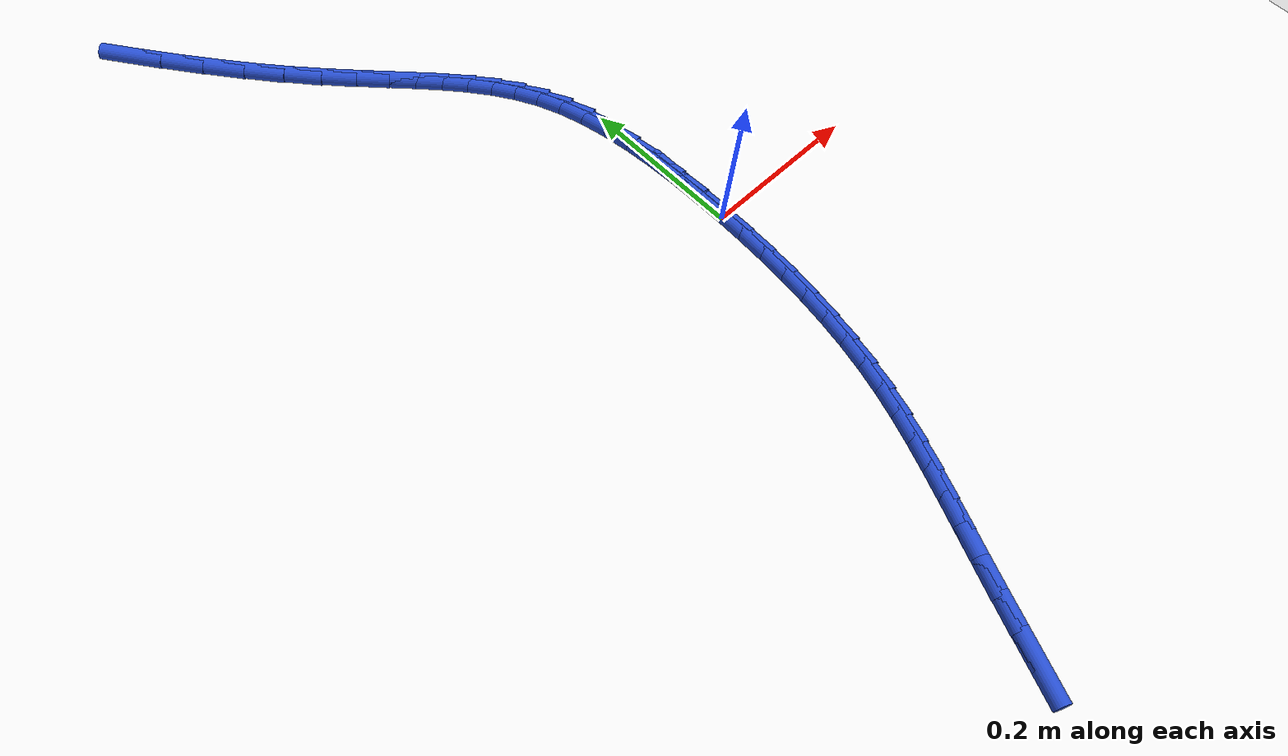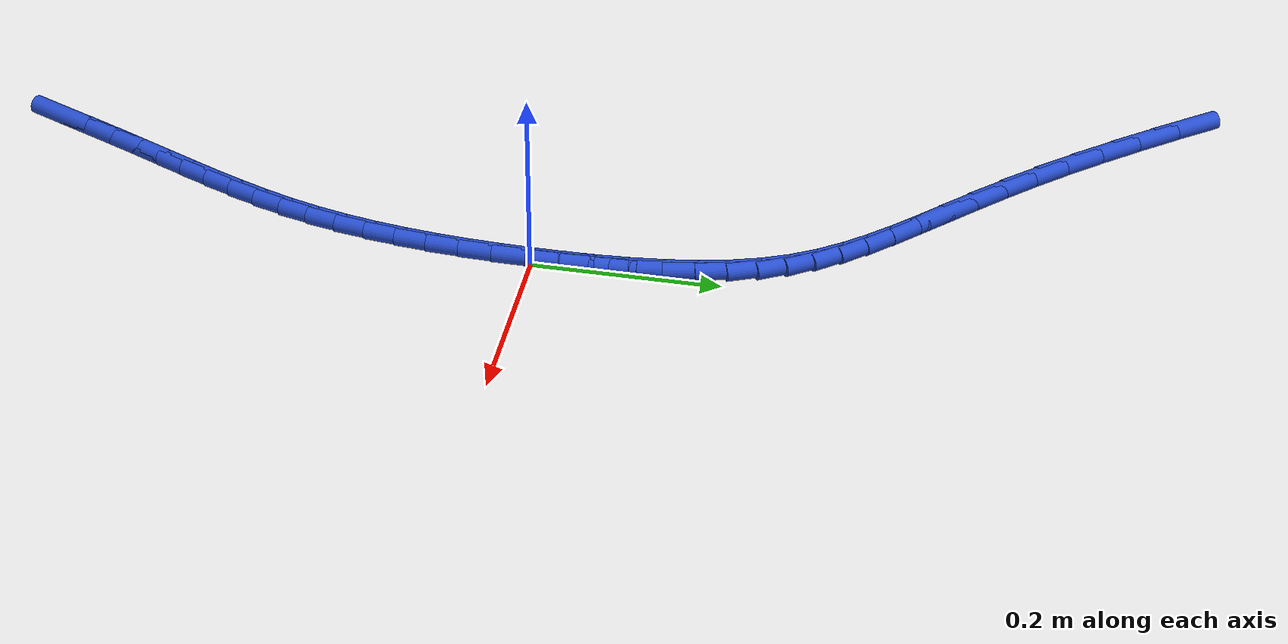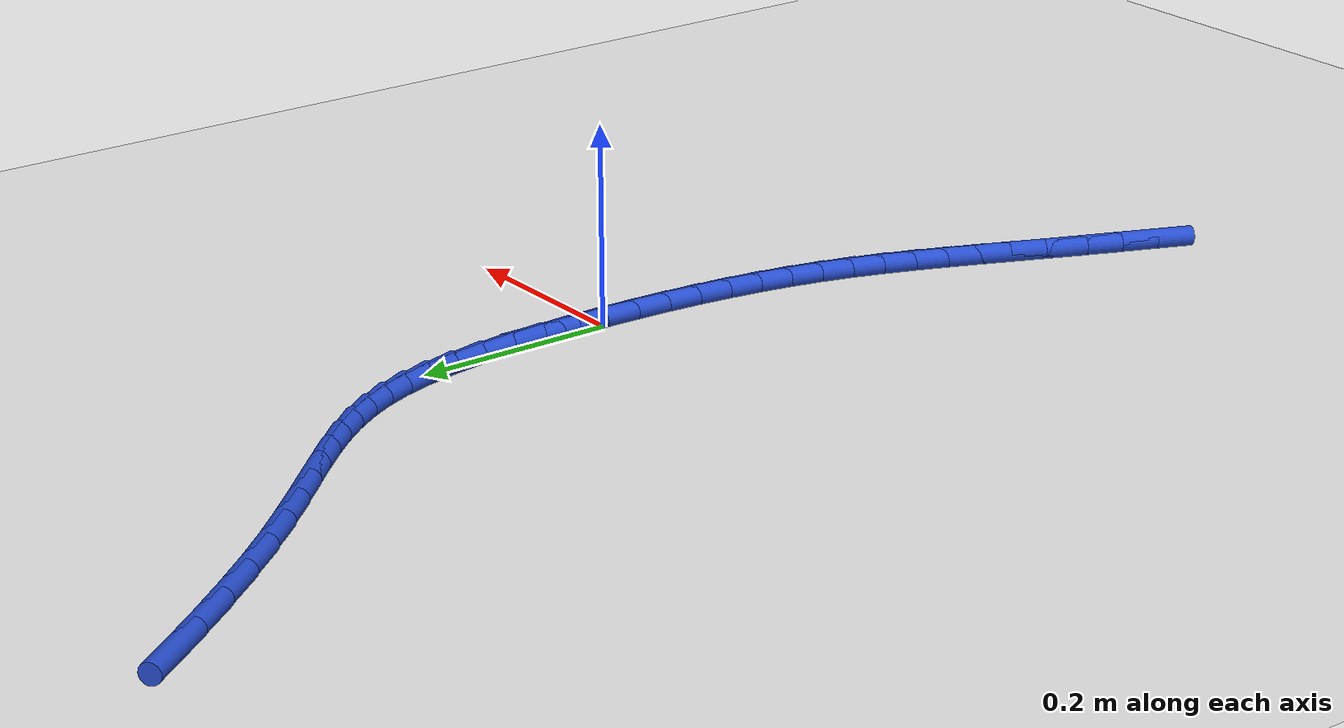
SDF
<sdf version="1.6">
 <world name="default">
  <model name="ground_plane">
   <static>1</static>
   <link name="link">
    <collision name="collision">
     <geometry><plane><normal>0 0 1</normal><size>100 100</size></plane></geometry>
     <surface><friction><ode><mu>100</mu><mu2>50</mu2></ode></friction></surface>
    </collision>
    <visual name="visual">
     <cast_shadows>0</cast_shadows>
     <geometry><plane><normal>0 0 1</normal><size>100 100</size></plane></geometry>
     <material>
      <script><uri>file://media/materials/scripts/gazebo.material</uri><name>Gazebo/WhiteGlow</name></script>
     </material>
    </visual>
   </link>
  </model>
  <model name="line">
   <link name="link_0">
    <pose>1.6696713456276768e-17 -4.85722573273506e-17 0.01 0 1.57 1.5651949544674577</pose>
    <collision name="collision">
     <geometry><cylinder><radius>0.01</radius><length>0.08</length></cylinder></geometry>
    </collision>
    <visual name="visual">
     <material>
      <script><name>Gazebo/Blue</name><uri>file://media/materials/scripts/gazebo.material</uri></script>
     </material>
     <geometry><cylinder><radius>0.01</radius><length>0.08</length></cylinder></geometry>
    </visual>
   </link>
   <link name="link_1">
    <pose>0.00020154477289173 0.03598094417909356 0.01 0 1.57 -1.5489126024037094</pose>
    <collision name="collision">
     <geometry><cylinder><radius>0.01</radius><length>0.08</length></cylinder></geometry>
    </collision>
    <visual name="visual">
     <material>
      <script><name>Gazebo/Blue</name><uri>file://media/materials/scripts/gazebo.material</uri></script>
     </material>
     <geometry><cylinder><radius>0.01</radius><length>0.08</length></cylinder></geometry>
    </visual>
   </link>
   <link name="link_2">
    <pose>-0.0005873252235443653 0.07202344083343072 0.01 0 1.57 -1.514280589093293</pose>
    <collision name="collision">
     <geometry><cylinder><radius>0.01</radius><length>0.08</length></cylinder></geometry>
    </collision>
    <visual name="visual">
     <material>
      <script><name>Gazebo/Blue</name><uri>file://media/materials/scripts/gazebo.material</uri></script>
     </material>
     <geometry><cylinder><radius>0.01</radius><length>0.08</length></cylinder></geometry>
    </visual>
   </link>
   <link name="link_3">
    <pose>-0.002607348114027349 0.10772804001505965 0.01 0 1.57 -1.4712639073552192</pose>
    <collision name="collision">
     <geometry><cylinder><radius>0.01</radius><length>0.08</length></cylinder></geometry>
    </collision>
    <visual name="visual">
     <material>
      <script><name>Gazebo/Blue</name><uri>file://media/materials/scripts/gazebo.material</uri></script>
     </material>
     <geometry><cylinder><radius>0.01</radius><length>0.08</length></cylinder></geometry>
    </visual>
   </link>
   <link name="link_4">
    <pose>-0.0060992620232763 0.14269529177602844 0.01 0 1.57 -1.4181511056378888</pose>
    <collision name="collision">
     <geometry><cylinder><radius>0.01</radius><length>0.08</length></cylinder></geometry>
    </collision>
    <visual name="visual">
     <material>
      <script><name>Gazebo/Blue</name><uri>file://media/materials/scripts/gazebo.material</uri></script>
     </material>
     <geometry><cylinder><radius>0.01</radius><length>0.08</length></cylinder></geometry>
    </visual>
   </link>
   <link name="link_5">
    <pose>-0.011303805076010302 0.17652574616838534 0.01 0 1.57 -1.3526757125911815</pose>
    <collision name="collision">
     <geometry><cylinder><radius>0.01</radius><length>0.08</length></cylinder></geometry>
    </collision>
    <visual name="visual">
     <material>
      <script><name>Gazebo/Blue</name><uri>file://media/materials/scripts/gazebo.material</uri></script>
     </material>
     <geometry><cylinder><radius>0.01</radius><length>0.08</length></cylinder></geometry>
    </visual>
   </link>
   <link name="link_6">
    <pose>-0.018461715396948433 0.20881995324417854 0.01 0 1.57 -1.2719683618093642</pose>
    <collision name="collision">
     <geometry><cylinder><radius>0.01</radius><length>0.08</length></cylinder></geometry>
    </collision>
    <visual name="visual">
     <material>
      <script><name>Gazebo/Blue</name><uri>file://media/materials/scripts/gazebo.material</uri></script>
     </material>
     <geometry><cylinder><radius>0.01</radius><length>0.08</length></cylinder></geometry>
    </visual>
   </link>
   <link name="link_7">
    <pose>-0.02781373111080977 0.23917846305545604 0.01 0 1.57 -1.173853776356065</pose>
    <collision name="collision">
     <geometry><cylinder><radius>0.01</radius><length>0.08</length></cylinder></geometry>
    </collision>
    <visual name="visual">
     <material>
      <script><name>Gazebo/Blue</name><uri>file://media/materials/scripts/gazebo.material</uri></script>
     </material>
     <geometry><cylinder><radius>0.01</radius><length>0.08</length></cylinder></geometry>
    </visual>
   </link>
   <link name="link_8">
    <pose>-0.03958216443736759 0.2672524257600745 0.01 0 1.57 -1.0713666835665674</pose>
    <collision name="collision">
     <geometry><cylinder><radius>0.01</radius><length>0.08</length></cylinder></geometry>
    </collision>
    <visual name="visual">
     <material>
      <script><name>Gazebo/Blue</name><uri>file://media/materials/scripts/gazebo.material</uri></script>
     </material>
     <geometry><cylinder><radius>0.01</radius><length>0.08</length></cylinder></geometry>
    </visual>
   </link>
   <link name="link_9">
    <pose>-0.05377807319103435 0.2932731255877425 0.01 0 1.57 -0.9794179680638049</pose>
    <collision name="collision">
     <geometry><cylinder><radius>0.01</radius><length>0.08</length></cylinder></geometry>
    </collision>
    <visual name="visual">
     <material>
      <script><name>Gazebo/Blue</name><uri>file://media/materials/scripts/gazebo.material</uri></script>
     </material>
     <geometry><cylinder><radius>0.01</radius><length>0.08</length></cylinder></geometry>
    </visual>
   </link>
   <link name="link_10">
    <pose>-0.0702776083239604 0.31784231983447486 0.01 0 1.57 -0.9038974325339743</pose>
    <collision name="collision">
     <geometry><cylinder><radius>0.01</radius><length>0.08</length></cylinder></geometry>
    </collision>
    <visual name="visual">
     <material>
      <script><name>Gazebo/Blue</name><uri>file://media/materials/scripts/gazebo.material</uri></script>
     </material>
     <geometry><cylinder><radius>0.01</radius><length>0.08</length></cylinder></geometry>
    </visual>
   </link>
   <link name="link_11">
    <pose>-0.08895473381124924 0.34156777154039003 0.01 0 1.57 -0.8477529484330161</pose>
    <collision name="collision">
     <geometry><cylinder><radius>0.01</radius><length>0.08</length></cylinder></geometry>
    </collision>
    <visual name="visual">
     <material>
      <script><name>Gazebo/Blue</name><uri>file://media/materials/scripts/gazebo.material</uri></script>
     </material>
     <geometry><cylinder><radius>0.01</radius><length>0.08</length></cylinder></geometry>
    </visual>
   </link>
   <link name="link_12">
    <pose>-0.10968341362800438 0.36505724374560633 0.01 0 1.57 -0.8113419454200357</pose>
    <collision name="collision">
     <geometry><cylinder><radius>0.01</radius><length>0.08</length></cylinder></geometry>
    </collision>
    <visual name="visual">
     <material>
      <script><name>Gazebo/Blue</name><uri>file://media/materials/scripts/gazebo.material</uri></script>
     </material>
     <geometry><cylinder><radius>0.01</radius><length>0.08</length></cylinder></geometry>
    </visual>
   </link>
   <link name="link_13">
    <pose>-0.1323376117493292 0.3889184994902424 0.01 0 1.57 -0.7932512524994244</pose>
    <collision name="collision">
     <geometry><cylinder><radius>0.01</radius><length>0.08</length></cylinder></geometry>
    </collision>
    <visual name="visual">
     <material>
      <script><name>Gazebo/Blue</name><uri>file://media/materials/scripts/gazebo.material</uri></script>
     </material>
     <geometry><cylinder><radius>0.01</radius><length>0.08</length></cylinder></geometry>
    </visual>
   </link>
   <link name="link_14">
    <pose>-0.1567912921503271 0.41375930181441606 0.01 0 1.57 -0.7911251281203546</pose>
    <collision name="collision">
     <geometry><cylinder><radius>0.01</radius><length>0.08</length></cylinder></geometry>
    </collision>
    <visual name="visual">
     <material>
      <script><name>Gazebo/Blue</name><uri>file://media/materials/scripts/gazebo.material</uri></script>
     </material>
     <geometry><cylinder><radius>0.01</radius><length>0.08</length></cylinder></geometry>
    </visual>
   </link>
   <link name="link_15">
    <pose>-0.18291841880610163 0.440187413758246 0.01 0 1.57 -0.8022471214272122</pose>
    <collision name="collision">
     <geometry><cylinder><radius>0.01</radius><length>0.08</length></cylinder></geometry>
    </collision>
    <visual name="visual">
     <material>
      <script><name>Gazebo/Blue</name><uri>file://media/materials/scripts/gazebo.material</uri></script>
     </material>
     <geometry><cylinder><radius>0.01</radius><length>0.08</length></cylinder></geometry>
    </visual>
   </link>
   <link name="link_16">
    <pose>-0.21059295569175626 0.4688105983618507 0.01 0 1.57 -0.8238794031601178</pose>
    <collision name="collision">
     <geometry><cylinder><radius>0.01</radius><length>0.08</length></cylinder></geometry>
    </collision>
    <visual name="visual">
     <material>
      <script><name>Gazebo/Blue</name><uri>file://media/materials/scripts/gazebo.material</uri></script>
     </material>
     <geometry><cylinder><radius>0.01</radius><length>0.08</length></cylinder></geometry>
    </visual>
   </link>
   <link name="link_17">
    <pose>-0.23968886678239443 0.5002366186653483 0.01 0 1.57 -0.8529064459018548</pose>
    <collision name="collision">
     <geometry><cylinder><radius>0.01</radius><length>0.08</length></cylinder></geometry>
    </collision>
    <visual name="visual">
     <material>
      <script><name>Gazebo/Blue</name><uri>file://media/materials/scripts/gazebo.material</uri></script>
     </material>
     <geometry><cylinder><radius>0.01</radius><length>0.08</length></cylinder></geometry>
    </visual>
   </link>
   <link name="link_18">
    <pose>-0.27007105732675757 0.5350250624790417 0.01 0 1.57 -0.8806291100988936</pose>
    <collision name="collision">
     <geometry><cylinder><radius>0.01</radius><length>0.08</length></cylinder></geometry>
    </collision>
    <visual name="visual">
     <material>
      <script><name>Gazebo/Blue</name><uri>file://media/materials/scripts/gazebo.material</uri></script>
     </material>
     <geometry><cylinder><radius>0.01</radius><length>0.08</length></cylinder></geometry>
    </visual>
   </link>
   <link name="link_19">
    <pose>-0.30147860523518016 0.5730663550066336 0.01 0 1.57 -0.9032263792399842</pose>
    <collision name="collision">
     <geometry><cylinder><radius>0.01</radius><length>0.08</length></cylinder></geometry>
    </collision>
    <visual name="visual">
     <material>
      <script><name>Gazebo/Blue</name><uri>file://media/materials/scripts/gazebo.material</uri></script>
     </material>
     <geometry><cylinder><radius>0.01</radius><length>0.08</length></cylinder></geometry>
    </visual>
   </link>
   <link name="link_20">
    <pose>-0.3335584677494666 0.6137610143501143 0.01 0 1.57 -0.9221630874930781</pose>
    <collision name="collision">
     <geometry><cylinder><radius>0.01</radius><length>0.08</length></cylinder></geometry>
    </collision>
    <visual name="visual">
     <material>
      <script><name>Gazebo/Blue</name><uri>file://media/materials/scripts/gazebo.material</uri></script>
     </material>
     <geometry><cylinder><radius>0.01</radius><length>0.08</length></cylinder></geometry>
    </visual>
   </link>
   <link name="link_21">
    <pose>-0.36595549085444545 0.6564983307317526 0.01 0 1.57 -0.9385152976863078</pose>
    <collision name="collision">
     <geometry><cylinder><radius>0.01</radius><length>0.08</length></cylinder></geometry>
    </collision>
    <visual name="visual">
     <material>
      <script><name>Gazebo/Blue</name><uri>file://media/materials/scripts/gazebo.material</uri></script>
     </material>
     <geometry><cylinder><radius>0.01</radius><length>0.08</length></cylinder></geometry>
    </visual>
   </link>
   <link name="link_233">
    <pose>-0.1580803642246254 -0.5637594744283474 0.01 0 1.57 1.1746573921802108</pose>
    <collision name="collision">
     <geometry><cylinder><radius>0.01</radius><length>0.08</length></cylinder></geometry>
    </collision>
    <visual name="visual">
     <material>
      <script><name>Gazebo/Blue</name><uri>file://media/materials/scripts/gazebo.material</uri></script>
     </material>
     <geometry><cylinder><radius>0.01</radius><length>0.08</length></cylinder></geometry>
    </visual>
   </link>
   <link name="link_234">
    <pose>-0.1432290556403992 -0.528251211283102 0.01 0 1.57 1.1742360723829302</pose>
    <collision name="collision">
     <geometry><cylinder><radius>0.01</radius><length>0.08</length></cylinder></geometry>
    </collision>
    <visual name="visual">
     <material>
      <script><name>Gazebo/Blue</name><uri>file://media/materials/scripts/gazebo.material</uri></script>
     </material>
     <geometry><cylinder><radius>0.01</radius><length>0.08</length></cylinder></geometry>
    </visual>
   </link>
   <link name="link_235">
    <pose>-0.12863939572617195 -0.49340977281971604 0.01 0 1.57 1.1659769165037241</pose>
    <collision name="collision">
     <geometry><cylinder><radius>0.01</radius><length>0.08</length></cylinder></geometry>
    </collision>
    <visual name="visual">
     <material>
      <script><name>Gazebo/Blue</name><uri>file://media/materials/scripts/gazebo.material</uri></script>
     </material>
     <geometry><cylinder><radius>0.01</radius><length>0.08</length></cylinder></geometry>
    </visual>
   </link>
   <link name="link_236">
    <pose>-0.1141552700415765 -0.4596067226841707 0.01 0 1.57 1.1587473229793839</pose>
    <collision name="collision">
     <geometry><cylinder><radius>0.01</radius><length>0.08</length></cylinder></geometry>
    </collision>
    <visual name="visual">
     <material>
      <script><name>Gazebo/Blue</name><uri>file://media/materials/scripts/gazebo.material</uri></script>
     </material>
     <geometry><cylinder><radius>0.01</radius><length>0.08</length></cylinder></geometry>
    </visual>
   </link>
   <link name="link_237">
    <pose>-0.09983466755163818 -0.42684167235127346 0.01 0 1.57 1.1591683685675431</pose>
    <collision name="collision">
     <geometry><cylinder><radius>0.01</radius><length>0.08</length></cylinder></geometry>
    </collision>
    <visual name="visual">
     <material>
      <script><name>Gazebo/Blue</name><uri>file://media/materials/scripts/gazebo.material</uri></script>
     </material>
     <geometry><cylinder><radius>0.01</radius><length>0.08</length></cylinder></geometry>
    </visual>
   </link>
   <link name="link_238">
    <pose>-0.08587655736492578 -0.39486931486313787 0.01 0 1.57 1.1679364237851608</pose>
    <collision name="collision">
     <geometry><cylinder><radius>0.01</radius><length>0.08</length></cylinder></geometry>
    </collision>
    <visual name="visual">
     <material>
      <script><name>Gazebo/Blue</name><uri>file://media/materials/scripts/gazebo.material</uri></script>
     </material>
     <geometry><cylinder><radius>0.01</radius><length>0.08</length></cylinder></geometry>
    </visual>
   </link>
   <link name="link_239">
    <pose>-0.07248238963433004 -0.36344003305569084 0.01 0 1.57 1.185469355350465</pose>
    <collision name="collision">
     <geometry><cylinder><radius>0.01</radius><length>0.08</length></cylinder></geometry>
    </collision>
    <visual name="visual">
     <material>
      <script><name>Gazebo/Blue</name><uri>file://media/materials/scripts/gazebo.material</uri></script>
     </material>
     <geometry><cylinder><radius>0.01</radius><length>0.08</length></cylinder></geometry>
    </visual>
   </link>
   <link name="link_240">
    <pose>-0.05985361451274217 -0.33230420976486036 0.01 0 1.57 1.2119568811508366</pose>
    <collision name="collision">
     <geometry><cylinder><radius>0.01</radius><length>0.08</length></cylinder></geometry>
    </collision>
    <visual name="visual">
     <material>
      <script><name>Gazebo/Blue</name><uri>file://media/materials/scripts/gazebo.material</uri></script>
     </material>
     <geometry><cylinder><radius>0.01</radius><length>0.08</length></cylinder></geometry>
    </visual>
   </link>
   <link name="link_241">
    <pose>-0.04819168215305222 -0.3012122278265718 0.01 0 1.57 1.247291142510378</pose>
    <collision name="collision">
     <geometry><cylinder><radius>0.01</radius><length>0.08</length></cylinder></geometry>
    </collision>
    <visual name="visual">
     <material>
      <script><name>Gazebo/Blue</name><uri>file://media/materials/scripts/gazebo.material</uri></script>
     </material>
     <geometry><cylinder><radius>0.01</radius><length>0.08</length></cylinder></geometry>
    </visual>
   </link>
   <link name="link_242">
    <pose>-0.0376980427081514 -0.2699144700767531 0.01 0 1.57 1.2909295057857237</pose>
    <collision name="collision">
     <geometry><cylinder><radius>0.01</radius><length>0.08</length></cylinder></geometry>
    </collision>
    <visual name="visual">
     <material>
      <script><name>Gazebo/Blue</name><uri>file://media/materials/scripts/gazebo.material</uri></script>
     </material>
     <geometry><cylinder><radius>0.01</radius><length>0.08</length></cylinder></geometry>
    </visual>
   </link>
   <link name="link_243">
    <pose>-0.02857233081435977 -0.2381629393455733 0.01 0 1.57 1.3380198232844402</pose>
    <collision name="collision">
     <geometry><cylinder><radius>0.01</radius><length>0.08</length></cylinder></geometry>
    </collision>
    <visual name="visual">
     <material>
      <script><name>Gazebo/Blue</name><uri>file://media/materials/scripts/gazebo.material</uri></script>
     </material>
     <geometry><cylinder><radius>0.01</radius><length>0.08</length></cylinder></geometry>
    </visual>
   </link>
   <link name="link_244">
    <pose>-0.020902188325869108 -0.20580957016589466 0.01 0 1.57 1.381792172050684</pose>
    <collision name="collision">
     <geometry><cylinder><radius>0.01</radius><length>0.08</length></cylinder></geometry>
    </collision>
    <visual name="visual">
     <material>
      <script><name>Gazebo/Blue</name><uri>file://media/materials/scripts/gazebo.material</uri></script>
     </material>
     <geometry><cylinder><radius>0.01</radius><length>0.08</length></cylinder></geometry>
    </visual>
   </link>
   <link name="link_245">
    <pose>-0.014599884486489906 -0.17286278290143467 0.01 0 1.57 1.4216212695290584</pose>
    <collision name="collision">
     <geometry><cylinder><radius>0.01</radius><length>0.08</length></cylinder></geometry>
    </collision>
    <visual name="visual">
     <material>
      <script><name>Gazebo/Blue</name><uri>file://media/materials/scripts/gazebo.material</uri></script>
     </material>
     <geometry><cylinder><radius>0.01</radius><length>0.08</length></cylinder></geometry>
    </visual>
   </link>
   <link name="link_246">
    <pose>-0.009562392295471723 -0.13934464682912445 0.01 0 1.57 1.457517538997528</pose>
    <collision name="collision">
     <geometry><cylinder><radius>0.01</radius><length>0.08</length></cylinder></geometry>
    </collision>
    <visual name="visual">
     <material>
      <script><name>Gazebo/Blue</name><uri>file://media/materials/scripts/gazebo.material</uri></script>
     </material>
     <geometry><cylinder><radius>0.01</radius><length>0.08</length></cylinder></geometry>
    </visual>
   </link>
   <link name="link_247">
    <pose>-0.005686684752064096 -0.10527723122589484 0.01 0 1.57 1.4895481957464232</pose>
    <collision name="collision">
     <geometry><cylinder><radius>0.01</radius><length>0.08</length></cylinder></geometry>
    </collision>
    <visual name="visual">
     <material>
      <script><name>Gazebo/Blue</name><uri>file://media/materials/scripts/gazebo.material</uri></script>
     </material>
     <geometry><cylinder><radius>0.01</radius><length>0.08</length></cylinder></geometry>
    </visual>
   </link>
   <link name="link_248">
    <pose>-0.0028697348555165657 -0.07068260536867692 0.01 0 1.57 1.5178194016528226</pose>
    <collision name="collision">
     <geometry><cylinder><radius>0.01</radius><length>0.08</length></cylinder></geometry>
    </collision>
    <visual name="visual">
     <material>
      <script><name>Gazebo/Blue</name><uri>file://media/materials/scripts/gazebo.material</uri></script>
     </material>
     <geometry><cylinder><radius>0.01</radius><length>0.08</length></cylinder></geometry>
    </visual>
   </link>
   <link name="link_249">
    <pose>-0.0010085156050786803 -0.03558283853440162 0.01 0 1.57 1.5424611594525834</pose>
    <collision name="collision">
     <geometry><cylinder><radius>0.01</radius><length>0.08</length></cylinder></geometry>
    </collision>
    <visual name="visual">
     <material>
      <script><name>Gazebo/Blue</name><uri>file://media/materials/scripts/gazebo.material</uri></script>
     </material>
     <geometry><cylinder><radius>0.01</radius><length>0.08</length></cylinder></geometry>
    </visual>
   </link>
   <link name="link_250">
    <pose>1.8214596497756474e-17 7.632783294297951e-17 0.01 0 1.57 1.5636152244404038</pose>
    <collision name="collision">
     <geometry><cylinder><radius>0.01</radius><length>0.08</length></cylinder></geometry>
    </collision>
    <visual name="visual">
     <material>
      <script><name>Gazebo/Blue</name><uri>file://media/materials/scripts/gazebo.material</uri></script>
     </material>
     <geometry><cylinder><radius>0.01</radius><length>0.08</length></cylinder></geometry>
    </visual>
   </link>
   <link name="link_251">
    <pose>0.00025883896046998475 0.03604384095759721 0.01 0 1.57 -1.5601667601881921</pose>
    <collision name="collision">
     <geometry><cylinder><radius>0.01</radius><length>0.08</length></cylinder></geometry>
    </collision>
    <visual name="visual">
     <material>
      <script><name>Gazebo/Blue</name><uri>file://media/materials/scripts/gazebo.material</uri></script>
     </material>
     <geometry><cylinder><radius>0.01</radius><length>0.08</length></cylinder></geometry>
    </visual>
   </link>
   <link name="link_252">
    <pose>-0.00012897172291832402 0.07252661506145877 0.01 0 1.57 -1.5690180611628526</pose>
    <collision name="collision">
     <geometry><cylinder><radius>0.01</radius><length>0.08</length></cylinder></geometry>
    </collision>
    <visual name="visual">
     <material>
      <script><name>Gazebo/Blue</name><uri>file://media/materials/scripts/gazebo.material</uri></script>
     </material>
     <geometry><cylinder><radius>0.01</radius><length>0.08</length></cylinder></geometry>
    </visual>
   </link>
  </model>
 </world>
</sdf>
